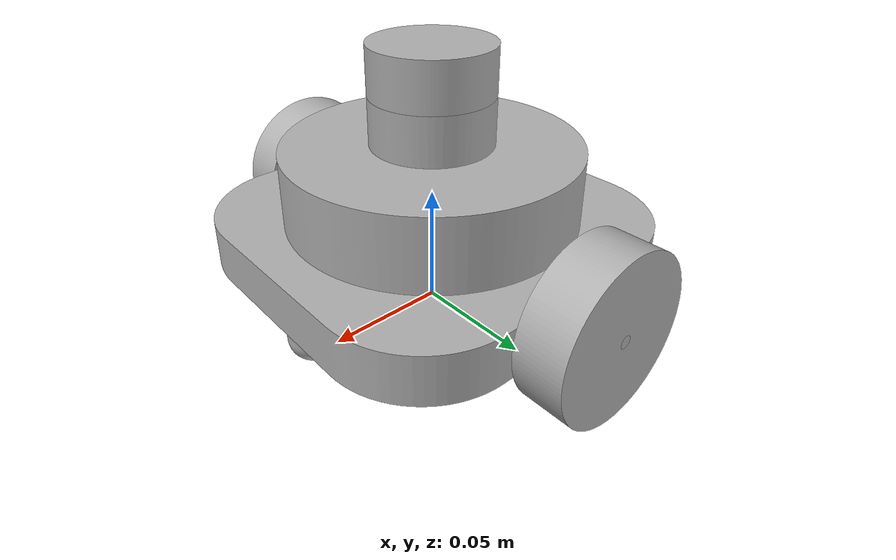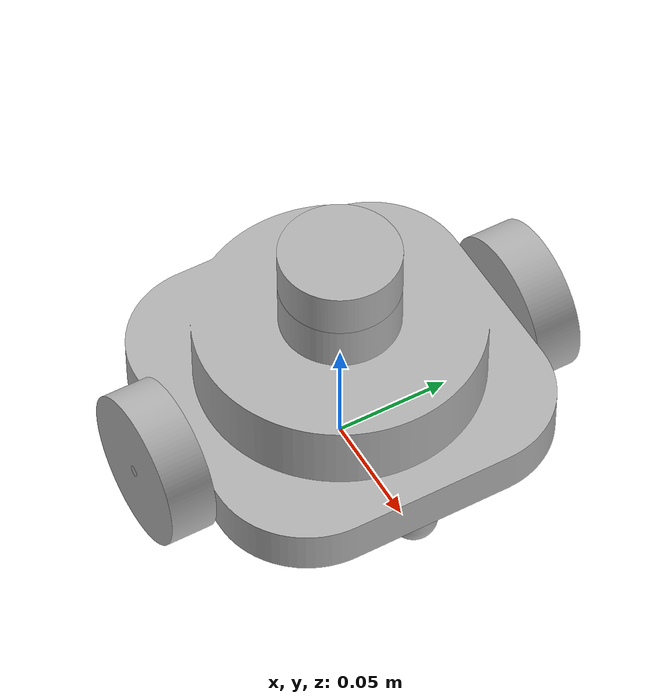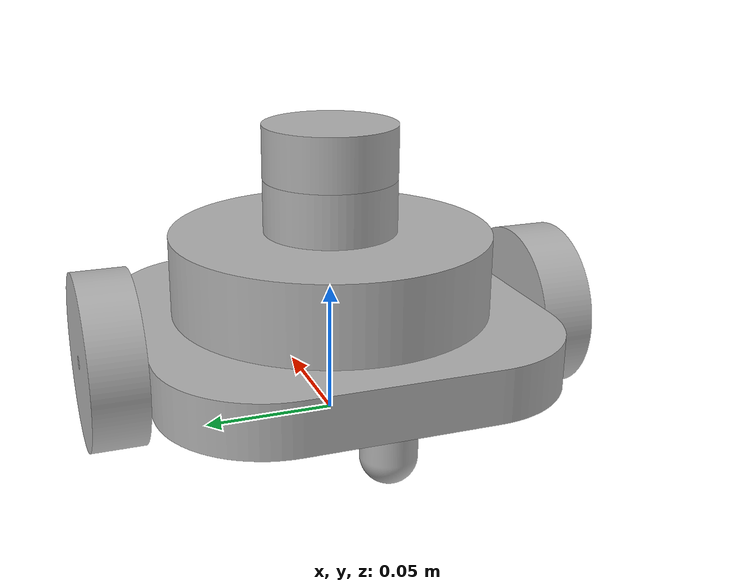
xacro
<?xml version="1.0" ?>
<robot name="diff_drive" xmlns:xacro="http://www.ros.org/wiki/xacro">

<xacro:include filename="$(find diff_drive_description)/urdf/materials.xacro" />
<xacro:include filename="$(find diff_drive_description)/urdf/diff_drive.trans" />
<xacro:include filename="$(find diff_drive_description)/gazebo/diff_drive_materials.gazebo" />
<xacro:include filename="$(find diff_drive_description)/gazebo/diff_drive_physics.gazebo" />
<xacro:include filename="$(find diff_drive_description)/gazebo/diff_drive_plugins.gazebo" />
<link name="base_link">
  <inertial>
    <origin rpy="0 0 0" xyz="-5.217345005836343e-16 2.268410872102757e-17 0.0455266598583738"/>
    <mass value="0.849990974505991"/>
    <inertia ixx="0.00133" ixy="0.0" ixz="-0.0" iyy="0.001324" iyz="0.0" izz="0.002198"/>
  </inertial>
  <visual>
    <origin rpy="0 0 0" xyz="0 0 0"/>
    <geometry>
      <mesh filename="package://diff_drive_description/meshes/base_link.stl" scale="0.001 0.001 0.001"/>
    </geometry>
    <material name="silver_default"/>
  </visual>
  <collision>
    <origin rpy="0 0 0" xyz="0 0 0"/>
    <geometry>
      <mesh filename="package://diff_drive_description/meshes/base_link.stl" scale="0.001 0.001 0.001"/>
    </geometry>
  </collision>
</link>

<link name="lidar_1">
  <inertial>
    <origin rpy="0 0 0" xyz="-1.1395061743102379e-17 -7.237528875152537e-18 0.010000000000000078"/>
    <mass value="0.10602875205865551"/>
    <inertia ixx="2e-05" ixy="-0.0" ixz="0.0" iyy="2e-05" iyz="0.0" izz="3.3e-05"/>
  </inertial>
  <visual>
    <origin rpy="0 0 0" xyz="-0.0 -0.0 -0.0925"/>
    <geometry>
      <mesh filename="package://diff_drive_description/meshes/lidar_1.stl" scale="0.001 0.001 0.001"/>
    </geometry>
    <material name="silver_default"/>
  </visual>
  <collision>
    <origin rpy="0 0 0" xyz="-0.0 -0.0 -0.0925"/>
    <geometry>
      <mesh filename="package://diff_drive_description/meshes/lidar_1.stl" scale="0.001 0.001 0.001"/>
    </geometry>
  </collision>
</link>

<link name="front_caster_1">
  <inertial>
    <origin rpy="0 0 0" xyz="-0.014999999999999965 1.6674890873458527e-17 -0.009728260869565143"/>
    <mass value="0.01625774198232718"/>
    <inertia ixx="1e-06" ixy="-0.0" ixz="-0.0" iyy="1e-06" iyz="0.0" izz="1e-06"/>
  </inertial>
  <visual>
    <origin rpy="0 0 0" xyz="-0.075 -0.0 -0.0225"/>
    <geometry>
      <mesh filename="package://diff_drive_description/meshes/front_caster_1.stl" scale="0.001 0.001 0.001"/>
    </geometry>
    <material name="silver_default"/>
  </visual>
  <collision>
    <origin rpy="0 0 0" xyz="-0.075 -0.0 -0.0225"/>
    <geometry>
      <mesh filename="package://diff_drive_description/meshes/front_caster_1.stl" scale="0.001 0.001 0.001"/>
    </geometry>
  </collision>
</link>

<link name="back_caster_1">
  <inertial>
    <origin rpy="0 0 0" xyz="0.014999999999999979 6.281738229804094e-19 -0.009728260869565198"/>
    <mass value="0.016257741982327177"/>
    <inertia ixx="1e-06" ixy="0.0" ixz="0.0" iyy="1e-06" iyz="-0.0" izz="1e-06"/>
  </inertial>
  <visual>
    <origin rpy="0 0 0" xyz="0.075 0.0 -0.0225"/>
    <geometry>
      <mesh filename="package://diff_drive_description/meshes/back_caster_1.stl" scale="0.001 0.001 0.001"/>
    </geometry>
    <material name="silver_default"/>
  </visual>
  <collision>
    <origin rpy="0 0 0" xyz="0.075 0.0 -0.0225"/>
    <geometry>
      <mesh filename="package://diff_drive_description/meshes/back_caster_1.stl" scale="0.001 0.001 0.001"/>
    </geometry>
  </collision>
</link>

<link name="right_wheel_1">
  <inertial>
    <origin rpy="0 0 0" xyz="-1.5552070975774192e-15 -0.009999999999999981 -6.938893903907228e-18"/>
    <mass value="0.06135530452460868"/>
    <inertia ixx="1.8e-05" ixy="-0.0" ixz="-0.0" iyy="3.3e-05" iyz="-0.0" izz="1.8e-05"/>
  </inertial>
  <visual>
    <origin rpy="0 0 0" xyz="-0.0 0.075 -0.0325"/>
    <geometry>
      <mesh filename="package://diff_drive_description/meshes/right_wheel_1.stl" scale="0.001 0.001 0.001"/>
    </geometry>
    <material name="silver_default"/>
  </visual>
  <collision>
    <origin rpy="0 0 0" xyz="-0.0 0.075 -0.0325"/>
    <geometry>
      <mesh filename="package://diff_drive_description/meshes/right_wheel_1.stl" scale="0.001 0.001 0.001"/>
    </geometry>
  </collision>
</link>

<link name="left_wheel_1">
  <inertial>
    <origin rpy="0 0 0" xyz="-1.5552070975774192e-15 0.009999999999999981 -6.938893903907228e-18"/>
    <mass value="0.06135530452460868"/>
    <inertia ixx="1.8e-05" ixy="0.0" ixz="-0.0" iyy="3.3e-05" iyz="0.0" izz="1.8e-05"/>
  </inertial>
  <visual>
    <origin rpy="0 0 0" xyz="-0.0 -0.075 -0.0325"/>
    <geometry>
      <mesh filename="package://diff_drive_description/meshes/left_wheel_1.stl" scale="0.001 0.001 0.001"/>
    </geometry>
    <material name="silver_default"/>
  </visual>
  <collision>
    <origin rpy="0 0 0" xyz="-0.0 -0.075 -0.0325"/>
    <geometry>
      <mesh filename="package://diff_drive_description/meshes/left_wheel_1.stl" scale="0.001 0.001 0.001"/>
    </geometry>
  </collision>
</link>

<joint name="lidar_joint" type="fixed">
  <origin rpy="0 0 0" xyz="0.0 0.0 0.0925"/>
  <parent link="base_link"/>
  <child link="lidar_1"/>
</joint>

<joint name="front_caster" type="fixed">
  <origin rpy="0 0 0" xyz="0.075 0.0 0.0225"/>
  <parent link="base_link"/>
  <child link="front_caster_1"/>
</joint>

<joint name="back_caster" type="fixed">
  <origin rpy="0 0 0" xyz="-0.075 0.0 0.0225"/>
  <parent link="base_link"/>
  <child link="back_caster_1"/>
</joint>

<joint name="motor_right" type="continuous">
  <origin rpy="0 0 0" xyz="0.0 -0.075 0.0325"/>
  <parent link="base_link"/>
  <child link="right_wheel_1"/>
  <axis xyz="-0.0 1.0 -0.0"/>
</joint>

<joint name="motor_left" type="continuous">
  <origin rpy="0 0 0" xyz="0.0 0.075 0.0325"/>
  <parent link="base_link"/>
  <child link="left_wheel_1"/>
  <axis xyz="-0.0 1.0 -0.0"/>
</joint>

</robot>

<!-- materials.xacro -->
<robot name="diff_drive" xmlns:xacro="http://www.ros.org/wiki/xacro" >

<material name="silver_default">
  <color rgba="0.700 0.700 0.700 1.000"/>
</material>

</robot>

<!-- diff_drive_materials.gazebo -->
<robot name="diff_drive" xmlns:xacro="http://www.ros.org/wiki/xacro" >

<xacro:property name="body_color" value="Gazebo/Yellow" />
<xacro:property name="wheel_color" value="Gazebo/Black" />
<xacro:property name="lidar_color" value="Gazebo/Red" />
<xacro:property name="caster_color" value="Gazebo/Green" />

<gazebo reference="base_link">
  <material>${body_color}</material>
</gazebo>

<gazebo reference="lidar_1">
  <material>${lidar_color}</material>
</gazebo>

<gazebo reference="front_caster_1">
  <material>${caster_color}</material>
</gazebo>

<gazebo reference="back_caster_1">
  <material>${caster_color}</material>
</gazebo>

<gazebo reference="right_wheel_1">
  <material>${wheel_color}</material>
</gazebo>

<gazebo reference="left_wheel_1">
  <material>${wheel_color}</material>
</gazebo>

</robot>
